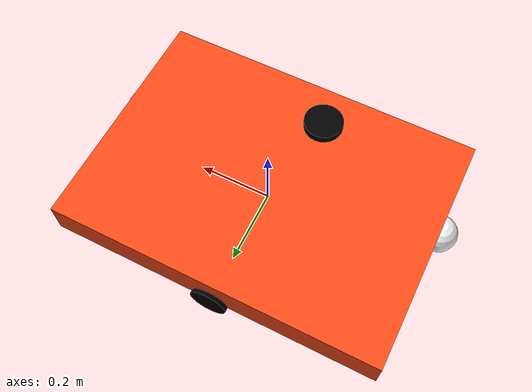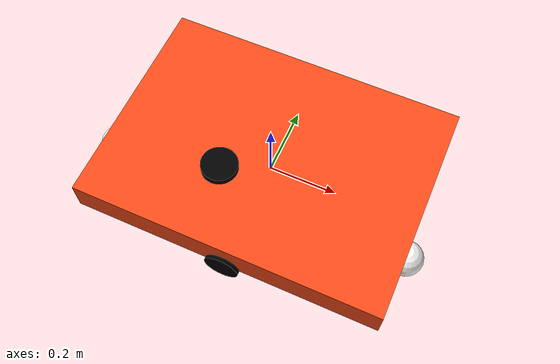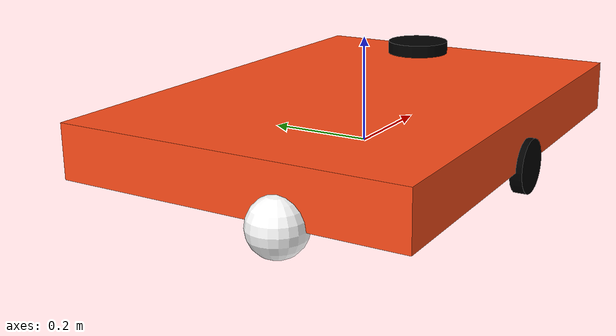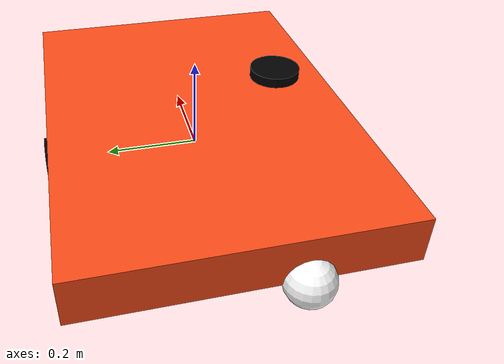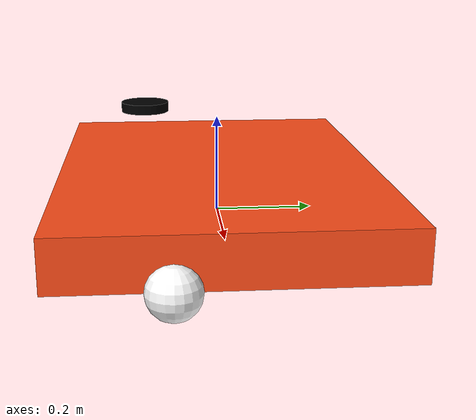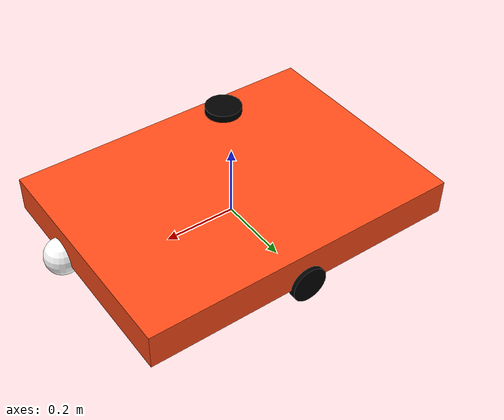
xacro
<?xml version="1.0"?>
<robot name="servbot" xmlns:xacro="http://www.ros.org/wiki/xacro">

  <!-- Materials -->
  <material name="white"><color rgba="1 1 1 1" /></material>
  <material name="orange"><color rgba="1 0.3 0.1 1"/></material>
  <material name="blue"><color rgba="0.2 0.2 1 1"/></material>
  <material name="black"><color rgba="0 0 0 1"/></material>
  <material name="red"><color rgba="1 0 0 1"/></material>

  <!-- Base link -->
  <link name="base_link"/>

  <!-- Base footprint link -->
  <link name="base_footprint"/>

  <joint name="base_footprint_joint" type="fixed">
    <parent link="base_link"/>
    <child link="base_footprint"/>
    <origin xyz="0 0 0" rpy="0 0 0"/>
  </joint>

  <!-- Left wheel -->
  <joint name="left_wheel_joint" type="continuous">
    <parent link="base_link"/>
    <child link="left_wheel_link"/>
    <origin xyz="0 -0.325 0" rpy="1.57 0 0"/>
    <axis xyz="0 0 1"/>
  </joint>

  <link name="left_wheel_link">
    <visual>
      <geometry><cylinder radius="0.05" length="0.023"/></geometry>
      <material name="black"/>
    </visual>
    <inertial>
      <mass value="0.1"/>
      <inertia ixx="1e-4" iyy="1e-4" izz="1e-4" ixy="0" ixz="0" iyz="0"/>
    </inertial>
  </link>

  <!-- Right wheel -->
  <joint name="right_wheel_joint" type="continuous">
    <parent link="base_link"/>
    <child link="right_wheel_link"/>
    <origin xyz="0 0.325 0" rpy="-1.57 0 0"/>
    <axis xyz="0 0 -1"/>
  </joint>

  <link name="right_wheel_link">
    <visual>
      <geometry><cylinder radius="0.05" length="0.023"/></geometry>
      <material name="black"/>
    </visual>
    <inertial>
      <mass value="0.1"/>
      <inertia ixx="1e-4" iyy="1e-4" izz="1e-4" ixy="0" ixz="0" iyz="0"/>
    </inertial>
  </link>

  <!-- Front caster -->
  <joint name="front_caster_joint" type="fixed">
    <parent link="base_link"/>
    <child link="front_caster_link"/>
    <origin xyz="0.45 -0.105 0" rpy="0 0 0"/>
  </joint>

  <link name="front_caster_link">
    <visual>
      <geometry><sphere radius="0.05"/></geometry>
      <material name="white"/>
    </visual>
    <collision>
      <geometry><sphere radius="0.05"/></geometry>
    </collision>
    <inertial>
      <mass value="0.01"/>
      <origin xyz="0 0 0" rpy="0 0 0"/>
      <inertia ixx="1e-5" iyy="1e-5" izz="1e-5" ixy="0" ixz="0" iyz="0"/>
    </inertial>
  </link>

  <!-- Rear caster -->
  <joint name="rear_caster_joint" type="fixed">
    <parent link="base_link"/>
    <child link="rear_caster_link"/>
    <origin xyz="-0.45 -0.105 0" rpy="0 0 0"/>
  </joint>

  <link name="rear_caster_link">
    <visual>
      <geometry><sphere radius="0.05"/></geometry>
      <material name="white"/>
    </visual>
    <collision>
      <geometry><sphere radius="0.05"/></geometry>
    </collision>
    <inertial>
      <mass value="0.01"/>
      <origin xyz="0 0 0" rpy="0 0 0"/>
      <inertia ixx="1e-5" iyy="1e-5" izz="1e-5" ixy="0" ixz="0" iyz="0"/>
    </inertial>
  </link>

  <!-- Chassis -->
  <link name="chassis_link">
    <visual>
      <geometry><box size="0.9 0.65 0.1"/></geometry>
      <material name="orange"/>
    </visual>
    <inertial>
      <mass value="1.0"/>
      <origin xyz="0 0 0" rpy="0 0 0"/>
      <inertia ixx="1e-2" iyy="1e-2" izz="1e-2" ixy="0" ixz="0" iyz="0"/>
    </inertial>
  </link>

  <joint name="chassis_joint" type="fixed">
    <parent link="base_link"/>
    <child link="chassis_link"/>
    <origin xyz="0 0 0.05" rpy="0 0 0"/>
  </joint>

  <!-- IMU -->

  <joint name="imu_joint" type="fixed">
    <parent link="base_link"/>
    <child link="imu_link"/>
    <origin xyz="0.025 -0.06 0.06" rpy="0 0 0"/>
  </joint>

  <link name="imu_link">
    <visual>
      <origin xyz="0 0 0" rpy="0 0 0"/>
      <geometry><sphere radius="0.02"/></geometry>
      <material name="blue"/>
    </visual>
  </link>

  <!-- LIDAR -->

  <joint name="rplidar_joint" type="fixed">
    <parent link="base_link"/>
    <child link="rplidar_link"/>
    <origin xyz="-0.08 -0.15 0.21" rpy="0 0 0"/>
  </joint>

  <link name="rplidar_link">
    <visual>
      <origin xyz=" 0 0 0" rpy="0 0 0"/>
      <geometry><cylinder radius="0.05" length="0.02"/></geometry>
      <material name="black"/>
    </visual>
  </link>

  <!-- ROS 2 Control -->
  <ros2_control name="DiffDriveHardware" type="system">
    <hardware>
      <plugin>diffdrive_hardware/DiffDriveHardware</plugin>
      <param name="serial_port">/dev/ttyACM0</param>
      <param name="baud_rate">115200</param>
      <param name="wheel_radius">0.05</param>
      <param name="wheel_separation">0.65</param>
      <param name="ticks_per_revolution">2800</param>
    </hardware>
    <joint name="left_wheel_joint">
      <command_interface name="velocity"/>
      <state_interface name="position"/>
      <state_interface name="velocity"/>
    </joint>
    <joint name="right_wheel_joint">
      <command_interface name="velocity"/>
      <state_interface name="position"/>
      <state_interface name="velocity"/>
    </joint>
    <sensor name="imu_sensor">
      <state_interface name="linear_acceleration.x"/>
      <state_interface name="linear_acceleration.y"/>
      <state_interface name="linear_acceleration.z"/>
      <state_interface name="angular_velocity.x"/>
      <state_interface name="angular_velocity.y"/>
      <state_interface name="angular_velocity.z"/>
    </sensor>
  </ros2_control>

</robot>
